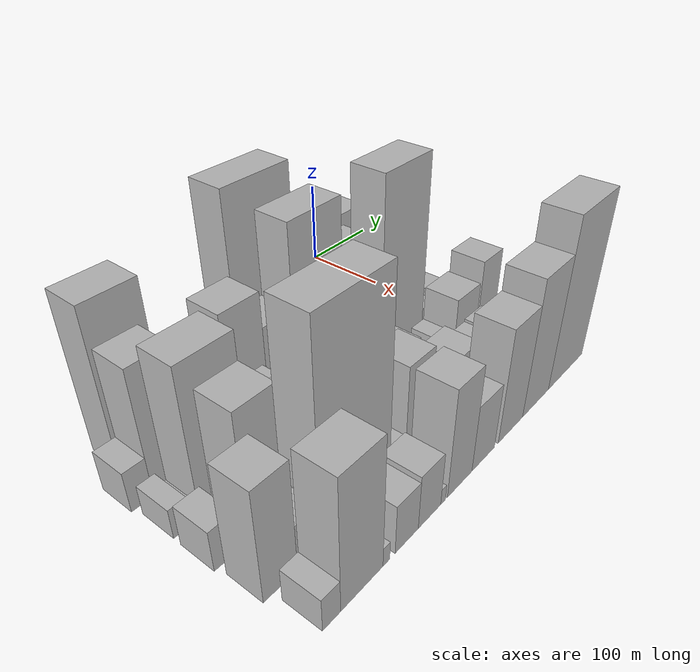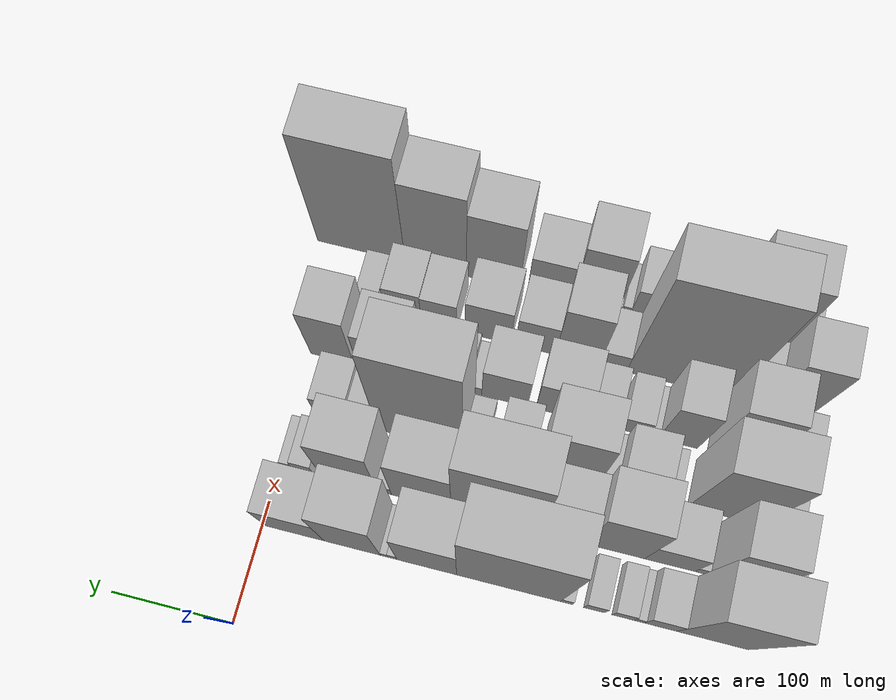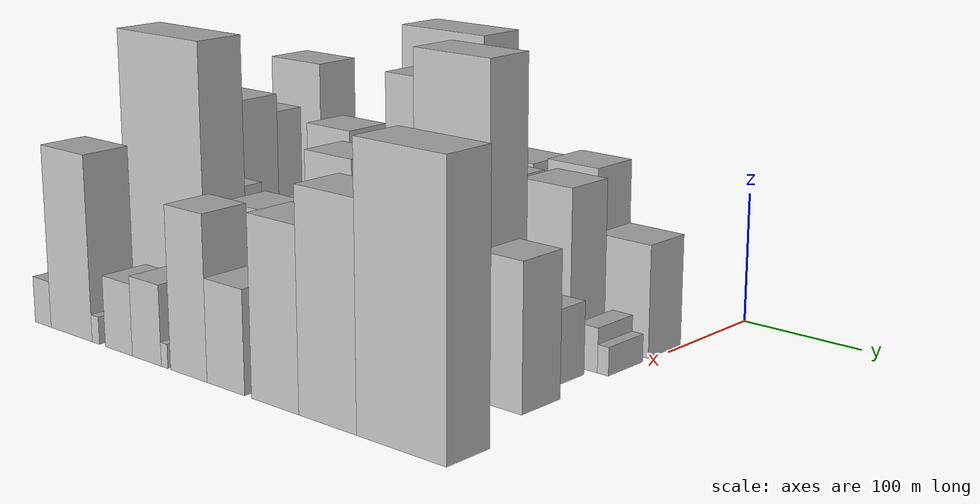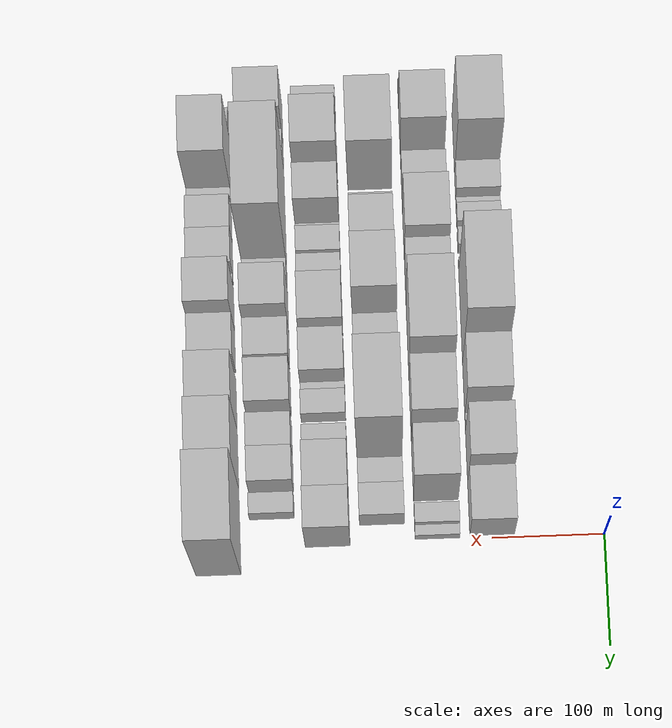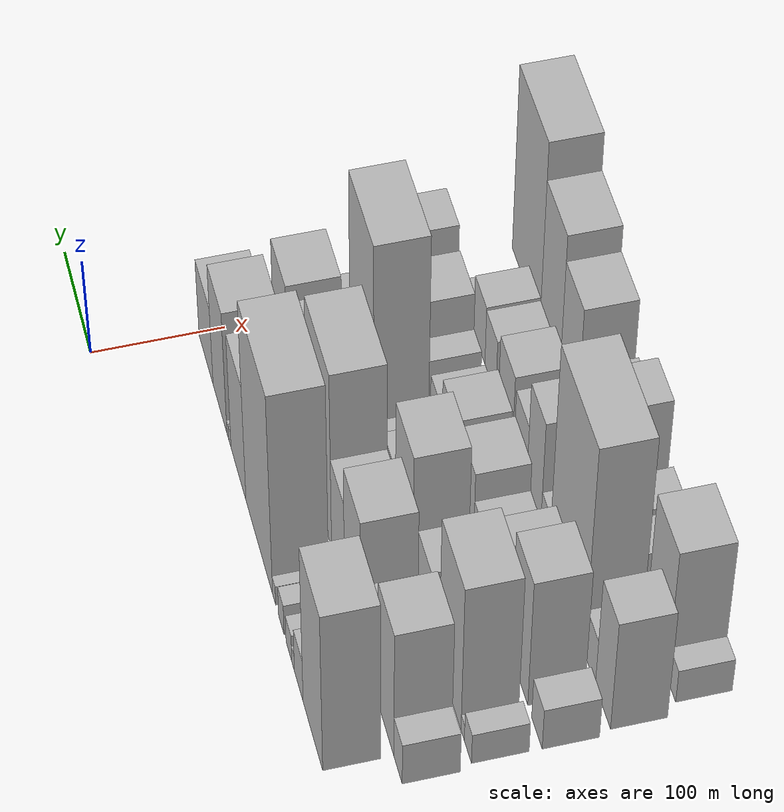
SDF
<sdf version="1.6">
 <world name="default">
  <model name="building_11">
   <static>1</static>
   <pose>100.0000 -366.6551 0 0.000000 0.000000 0.000000</pose>
   <link name="link">
    <pose>0 0 87.00 0 0 0</pose>
    <collision name="collision"><geometry><box><size>40.0000 57.4342 174.0000</size></box></geometry></collision>
    <visual name="visual">
     <cast_shadows>0</cast_shadows>
     <geometry><box><size>40.0000 57.4342 174.0000</size></box></geometry>
     <material>
      <script>
       <uri>model://HANNAS_wall/materials/scripts</uri>
       <uri>model://HANNAS_wall/materials/textures</uri>
       <name>vrc/HANNAS_wall</name>
      </script>
     </material>
    </visual>
   </link>
  </model>
  <model name="building_12">
   <static>1</static>
   <pose>100.0000 -324.9212 0 0.000000 0.000000 0.000000</pose>
   <link name="link">
    <pose>0 0 24.00 0 0 0</pose>
    <collision name="collision"><geometry><box><size>40.0000 26.0335 48.0000</size></box></geometry></collision>
    <visual name="visual">
     <cast_shadows>0</cast_shadows>
     <geometry><box><size>40.0000 26.0335 48.0000</size></box></geometry>
     <material>
      <script>
       <uri>model://HANNAS_wall/materials/scripts</uri>
       <uri>model://HANNAS_wall/materials/textures</uri>
       <name>vrc/HANNAS_wall</name>
      </script>
     </material>
    </visual>
   </link>
  </model>
  <model name="building_13">
   <static>1</static>
   <pose>100.0000 -307.8725 0 0.000000 0.000000 0.000000</pose>
   <link name="link">
    <pose>0 0 9.00 0 0 0</pose>
    <collision name="collision"><geometry><box><size>40.0000 8.0638 18.0000</size></box></geometry></collision>
    <visual name="visual">
     <cast_shadows>0</cast_shadows>
     <geometry><box><size>40.0000 8.0638 18.0000</size></box></geometry>
     <material>
      <script>
       <uri>model://HANNAS_wall/materials/scripts</uri>
       <uri>model://HANNAS_wall/materials/textures</uri>
       <name>vrc/HANNAS_wall</name>
      </script>
     </material>
    </visual>
   </link>
  </model>
  <model name="building_14">
   <static>1</static>
   <pose>100.0000 -295.1148 0 0.000000 0.000000 0.000000</pose>
   <link name="link">
    <pose>0 0 15.00 0 0 0</pose>
    <collision name="collision"><geometry><box><size>40.0000 17.4516 30.0000</size></box></geometry></collision>
    <visual name="visual">
     <cast_shadows>0</cast_shadows>
     <geometry><box><size>40.0000 17.4516 30.0000</size></box></geometry>
     <material>
      <script>
       <uri>model://HANNAS_wall/materials/scripts</uri>
       <uri>model://HANNAS_wall/materials/textures</uri>
       <name>vrc/HANNAS_wall</name>
      </script>
     </material>
    </visual>
   </link>
  </model>
  <model name="building_15">
   <static>1</static>
   <pose>100.0000 -271.9981 0 0.000000 0.000000 0.000000</pose>
   <link name="link">
    <pose>0 0 16.50 0 0 0</pose>
    <collision name="collision"><geometry><box><size>40.0000 16.7818 33.0000</size></box></geometry></collision>
    <visual name="visual">
     <cast_shadows>0</cast_shadows>
     <geometry><box><size>40.0000 16.7818 33.0000</size></box></geometry>
     <material>
      <script>
       <uri>model://HANNAS_wall/materials/scripts</uri>
       <uri>model://HANNAS_wall/materials/textures</uri>
       <name>vrc/HANNAS_wall</name>
      </script>
     </material>
    </visual>
   </link>
  </model>
  <model name="building_16">
   <static>1</static>
   <pose>100.0000 -249.7457 0 0.000000 0.000000 0.000000</pose>
   <link name="link">
    <pose>0 0 10.50 0 0 0</pose>
    <collision name="collision"><geometry><box><size>40.0000 9.7230 21.0000</size></box></geometry></collision>
    <visual name="visual">
     <cast_shadows>0</cast_shadows>
     <geometry><box><size>40.0000 9.7230 21.0000</size></box></geometry>
     <material>
      <script>
       <uri>model://HANNAS_wall/materials/scripts</uri>
       <uri>model://HANNAS_wall/materials/textures</uri>
       <name>vrc/HANNAS_wall</name>
      </script>
     </material>
    </visual>
   </link>
  </model>
  <model name="building_17">
   <static>1</static>
   <pose>100.0000 -202.7161 0 0.000000 0.000000 0.000000</pose>
   <link name="link">
    <pose>0 0 108.00 0 0 0</pose>
    <collision name="collision"><geometry><box><size>40.0000 84.3361 216.0000</size></box></geometry></collision>
    <visual name="visual">
     <cast_shadows>0</cast_shadows>
     <geometry><box><size>40.0000 84.3361 216.0000</size></box></geometry>
     <material>
      <script>
       <uri>model://HANNAS_wall/materials/scripts</uri>
       <uri>model://HANNAS_wall/materials/textures</uri>
       <name>vrc/HANNAS_wall</name>
      </script>
     </material>
    </visual>
   </link>
  </model>
  <model name="building_18">
   <static>1</static>
   <pose>100.0000 -136.1707 0 0.000000 0.000000 0.000000</pose>
   <link name="link">
    <pose>0 0 63.00 0 0 0</pose>
    <collision name="collision"><geometry><box><size>40.0000 48.7547 126.0000</size></box></geometry></collision>
    <visual name="visual">
     <cast_shadows>0</cast_shadows>
     <geometry><box><size>40.0000 48.7547 126.0000</size></box></geometry>
     <material>
      <script>
       <uri>model://HANNAS_wall/materials/scripts</uri>
       <uri>model://HANNAS_wall/materials/textures</uri>
       <name>vrc/HANNAS_wall</name>
      </script>
     </material>
    </visual>
   </link>
  </model>
  <model name="building_19">
   <static>1</static>
   <pose>100.0000 -107.9350 0 0.000000 0.000000 0.000000</pose>
   <link name="link">
    <pose>0 0 9.00 0 0 0</pose>
    <collision name="collision"><geometry><box><size>40.0000 7.7166 18.0000</size></box></geometry></collision>
    <visual name="visual">
     <cast_shadows>0</cast_shadows>
     <geometry><box><size>40.0000 7.7166 18.0000</size></box></geometry>
     <material>
      <script>
       <uri>model://HANNAS_wall/materials/scripts</uri>
       <uri>model://HANNAS_wall/materials/textures</uri>
       <name>vrc/HANNAS_wall</name>
      </script>
     </material>
    </visual>
   </link>
  </model>
  <model name="building_20">
   <static>1</static>
   <pose>100.0000 -101.0726 0 0.000000 0.000000 0.000000</pose>
   <link name="link">
    <pose>0 0 7.50 0 0 0</pose>
    <collision name="collision"><geometry><box><size>40.0000 6.0082 15.0000</size></box></geometry></collision>
    <visual name="visual">
     <cast_shadows>0</cast_shadows>
     <geometry><box><size>40.0000 6.0082 15.0000</size></box></geometry>
     <material>
      <script>
       <uri>model://HANNAS_wall/materials/scripts</uri>
       <uri>model://HANNAS_wall/materials/textures</uri>
       <name>vrc/HANNAS_wall</name>
      </script>
     </material>
    </visual>
   </link>
  </model>
  <model name="building_21">
   <static>1</static>
   <pose>100.0000 -74.8214 0 0.000000 0.000000 0.000000</pose>
   <link name="link">
    <pose>0 0 66.00 0 0 0</pose>
    <collision name="collision"><geometry><box><size>40.0000 46.4943 132.0000</size></box></geometry></collision>
    <visual name="visual">
     <cast_shadows>0</cast_shadows>
     <geometry><box><size>40.0000 46.4943 132.0000</size></box></geometry>
     <material>
      <script>
       <uri>model://HANNAS_wall/materials/scripts</uri>
       <uri>model://HANNAS_wall/materials/textures</uri>
       <name>vrc/HANNAS_wall</name>
      </script>
     </material>
    </visual>
   </link>
  </model>
  <model name="building_22">
   <static>1</static>
   <pose>100.0000 -27.4610 0 0.000000 0.000000 0.000000</pose>
   <link name="link">
    <pose>0 0 42.00 0 0 0</pose>
    <collision name="collision"><geometry><box><size>40.0000 48.2265 84.0000</size></box></geometry></collision>
    <visual name="visual">
     <cast_shadows>0</cast_shadows>
     <geometry><box><size>40.0000 48.2265 84.0000</size></box></geometry>
     <material>
      <script>
       <uri>model://HANNAS_wall/materials/scripts</uri>
       <uri>model://HANNAS_wall/materials/textures</uri>
       <name>vrc/HANNAS_wall</name>
      </script>
     </material>
    </visual>
   </link>
  </model>
  <model name="building_59">
   <static>1</static>
   <pose>149.0000 -406.9824 0 0.000000 0.000000 0.000000</pose>
   <link name="link">
    <pose>0 0 22.50 0 0 0</pose>
    <collision name="collision"><geometry><box><size>40.0000 22.8685 45.0000</size></box></geometry></collision>
    <visual name="visual">
     <cast_shadows>0</cast_shadows>
     <geometry><box><size>40.0000 22.8685 45.0000</size></box></geometry>
     <material>
      <script>
       <uri>model://HANNAS_wall/materials/scripts</uri>
       <uri>model://HANNAS_wall/materials/textures</uri>
       <name>vrc/HANNAS_wall</name>
      </script>
     </material>
    </visual>
   </link>
  </model>
  <model name="building_60">
   <static>1</static>
   <pose>149.0000 -373.7912 0 0.000000 0.000000 0.000000</pose>
   <link name="link">
    <pose>0 0 69.00 0 0 0</pose>
    <collision name="collision"><geometry><box><size>40.0000 43.5139 138.0000</size></box></geometry></collision>
    <visual name="visual">
     <cast_shadows>0</cast_shadows>
     <geometry><box><size>40.0000 43.5139 138.0000</size></box></geometry>
     <material>
      <script>
       <uri>model://HANNAS_wall/materials/scripts</uri>
       <uri>model://HANNAS_wall/materials/textures</uri>
       <name>vrc/HANNAS_wall</name>
      </script>
     </material>
    </visual>
   </link>
  </model>
  <model name="building_61">
   <static>1</static>
   <pose>149.0000 -347.4474 0 0.000000 0.000000 0.000000</pose>
   <link name="link">
    <pose>0 0 10.50 0 0 0</pose>
    <collision name="collision"><geometry><box><size>40.0000 9.1737 21.0000</size></box></geometry></collision>
    <visual name="visual">
     <cast_shadows>0</cast_shadows>
     <geometry><box><size>40.0000 9.1737 21.0000</size></box></geometry>
     <material>
      <script>
       <uri>model://HANNAS_wall/materials/scripts</uri>
       <uri>model://HANNAS_wall/materials/textures</uri>
       <name>vrc/HANNAS_wall</name>
      </script>
     </material>
    </visual>
   </link>
  </model>
  <model name="building_62">
   <static>1</static>
   <pose>149.0000 -322.5647 0 0.000000 0.000000 0.000000</pose>
   <link name="link">
    <pose>0 0 34.50 0 0 0</pose>
    <collision name="collision"><geometry><box><size>40.0000 40.5917 69.0000</size></box></geometry></collision>
    <visual name="visual">
     <cast_shadows>0</cast_shadows>
     <geometry><box><size>40.0000 40.5917 69.0000</size></box></geometry>
     <material>
      <script>
       <uri>model://HANNAS_wall/materials/scripts</uri>
       <uri>model://HANNAS_wall/materials/textures</uri>
       <name>vrc/HANNAS_wall</name>
      </script>
     </material>
    </visual>
   </link>
  </model>
  <model name="building_63">
   <static>1</static>
   <pose>149.0000 -278.4743 0 0.000000 0.000000 0.000000</pose>
   <link name="link">
    <pose>0 0 69.00 0 0 0</pose>
    <collision name="collision"><geometry><box><size>40.0000 47.5891 138.0000</size></box></geometry></collision>
    <visual name="visual">
     <cast_shadows>0</cast_shadows>
     <geometry><box><size>40.0000 47.5891 138.0000</size></box></geometry>
     <material>
      <script>
       <uri>model://HANNAS_wall/materials/scripts</uri>
       <uri>model://HANNAS_wall/materials/textures</uri>
       <name>vrc/HANNAS_wall</name>
      </script>
     </material>
    </visual>
   </link>
  </model>
  <model name="building_64">
   <static>1</static>
   <pose>149.0000 -235.1971 0 0.000000 0.000000 0.000000</pose>
   <link name="link">
    <pose>0 0 49.50 0 0 0</pose>
    <collision name="collision"><geometry><box><size>40.0000 38.9654 99.0000</size></box></geometry></collision>
    <visual name="visual">
     <cast_shadows>0</cast_shadows>
     <geometry><box><size>40.0000 38.9654 99.0000</size></box></geometry>
     <material>
      <script>
       <uri>model://HANNAS_wall/materials/scripts</uri>
       <uri>model://HANNAS_wall/materials/textures</uri>
       <name>vrc/HANNAS_wall</name>
      </script>
     </material>
    </visual>
   </link>
  </model>
  <model name="building_65">
   <static>1</static>
   <pose>149.0000 -179.7272 0 0.000000 0.000000 0.000000</pose>
   <link name="link">
    <pose>0 0 94.50 0 0 0</pose>
    <collision name="collision"><geometry><box><size>40.0000 71.9743 189.0000</size></box></geometry></collision>
    <visual name="visual">
     <cast_shadows>0</cast_shadows>
     <geometry><box><size>40.0000 71.9743 189.0000</size></box></geometry>
     <material>
      <script>
       <uri>model://HANNAS_wall/materials/scripts</uri>
       <uri>model://HANNAS_wall/materials/textures</uri>
       <name>vrc/HANNAS_wall</name>
      </script>
     </material>
    </visual>
   </link>
  </model>
  <model name="building_66">
   <static>1</static>
   <pose>149.0000 -118.8630 0 0.000000 0.000000 0.000000</pose>
   <link name="link">
    <pose>0 0 63.00 0 0 0</pose>
    <collision name="collision"><geometry><box><size>40.0000 49.7541 126.0000</size></box></geometry></collision>
    <visual name="visual">
     <cast_shadows>0</cast_shadows>
     <geometry><box><size>40.0000 49.7541 126.0000</size></box></geometry>
     <material>
      <script>
       <uri>model://HANNAS_wall/materials/scripts</uri>
       <uri>model://HANNAS_wall/materials/textures</uri>
       <name>vrc/HANNAS_wall</name>
      </script>
     </material>
    </visual>
   </link>
  </model>
  <model name="building_67">
   <static>1</static>
   <pose>149.0000 -88.0006 0 0.000000 0.000000 0.000000</pose>
   <link name="link">
    <pose>0 0 12.00 0 0 0</pose>
    <collision name="collision"><geometry><box><size>40.0000 11.9706 24.0000</size></box></geometry></collision>
    <visual name="visual">
     <cast_shadows>0</cast_shadows>
     <geometry><box><size>40.0000 11.9706 24.0000</size></box></geometry>
     <material>
      <script>
       <uri>model://HANNAS_wall/materials/scripts</uri>
       <uri>model://HANNAS_wall/materials/textures</uri>
       <name>vrc/HANNAS_wall</name>
      </script>
     </material>
    </visual>
   </link>
  </model>
  <model name="building_68">
   <static>1</static>
   <pose>149.0000 -59.0930 0 0.000000 0.000000 0.000000</pose>
   <link name="link">
    <pose>0 0 64.50 0 0 0</pose>
    <collision name="collision"><geometry><box><size>40.0000 45.8446 129.0000</size></box></geometry></collision>
    <visual name="visual">
     <cast_shadows>0</cast_shadows>
     <geometry><box><size>40.0000 45.8446 129.0000</size></box></geometry>
     <material>
      <script>
       <uri>model://HANNAS_wall/materials/scripts</uri>
       <uri>model://HANNAS_wall/materials/textures</uri>
       <name>vrc/HANNAS_wall</name>
      </script>
     </material>
    </visual>
   </link>
  </model>
  <model name="building_69">
   <static>1</static>
   <pose>149.0000 -20.2606 0 0.000000 0.000000 0.000000</pose>
   <link name="link">
    <pose>0 0 16.50 0 0 0</pose>
    <collision name="collision"><geometry><box><size>40.0000 17.8203 33.0000</size></box></geometry></collision>
    <visual name="visual">
     <cast_shadows>0</cast_shadows>
     <geometry><box><size>40.0000 17.8203 33.0000</size></box></geometry>
     <material>
      <script>
       <uri>model://HANNAS_wall/materials/scripts</uri>
       <uri>model://HANNAS_wall/materials/textures</uri>
       <name>vrc/HANNAS_wall</name>
      </script>
     </material>
    </visual>
   </link>
  </model>
  <model name="building_70">
   <static>1</static>
   <pose>149.0000 -6.4971 0 0.000000 0.000000 0.000000</pose>
   <link name="link">
    <pose>0 0 10.50 0 0 0</pose>
    <collision name="collision"><geometry><box><size>40.0000 9.7068 21.0000</size></box></geometry></collision>
    <visual name="visual">
     <cast_shadows>0</cast_shadows>
     <geometry><box><size>40.0000 9.7068 21.0000</size></box></geometry>
     <material>
      <script>
       <uri>model://HANNAS_wall/materials/scripts</uri>
       <uri>model://HANNAS_wall/materials/textures</uri>
       <name>vrc/HANNAS_wall</name>
      </script>
     </material>
    </visual>
   </link>
  </model>
  <model name="building_108">
   <static>1</static>
   <pose>198.0000 -404.3457 0 0.000000 0.000000 0.000000</pose>
   <link name="link">
    <pose>0 0 16.50 0 0 0</pose>
    <collision name="collision"><geometry><box><size>40.0000 18.6517 33.0000</size></box></geometry></collision>
    <visual name="visual">
     <cast_shadows>0</cast_shadows>
     <geometry><box><size>40.0000 18.6517 33.0000</size></box></geometry>
     <material>
      <script>
       <uri>model://HANNAS_wall/materials/scripts</uri>
       <uri>model://HANNAS_wall/materials/textures</uri>
       <name>vrc/HANNAS_wall</name>
      </script>
     </material>
    </visual>
   </link>
  </model>
  <model name="building_109">
   <static>1</static>
   <pose>198.0000 -390.5286 0 0.000000 0.000000 0.000000</pose>
   <link name="link">
    <pose>0 0 9.00 0 0 0</pose>
    <collision name="collision"><geometry><box><size>40.0000 8.9823 18.0000</size></box></geometry></collision>
    <visual name="visual">
     <cast_shadows>0</cast_shadows>
     <geometry><box><size>40.0000 8.9823 18.0000</size></box></geometry>
     <material>
      <script>
       <uri>model://HANNAS_wall/materials/scripts</uri>
       <uri>model://HANNAS_wall/materials/textures</uri>
       <name>vrc/HANNAS_wall</name>
      </script>
     </material>
    </visual>
   </link>
  </model>
  <model name="building_110">
   <static>1</static>
   <pose>198.0000 -356.4612 0 0.000000 0.000000 0.000000</pose>
   <link name="link">
    <pose>0 0 79.50 0 0 0</pose>
    <collision name="collision"><geometry><box><size>40.0000 59.1525 159.0000</size></box></geometry></collision>
    <visual name="visual">
     <cast_shadows>0</cast_shadows>
     <geometry><box><size>40.0000 59.1525 159.0000</size></box></geometry>
     <material>
      <script>
       <uri>model://HANNAS_wall/materials/scripts</uri>
       <uri>model://HANNAS_wall/materials/textures</uri>
       <name>vrc/HANNAS_wall</name>
      </script>
     </material>
    </visual>
   </link>
  </model>
  <model name="building_111">
   <static>1</static>
   <pose>198.0000 -310.3316 0 0.000000 0.000000 0.000000</pose>
   <link name="link">
    <pose>0 0 13.50 0 0 0</pose>
    <collision name="collision"><geometry><box><size>40.0000 13.1068 27.0000</size></box></geometry></collision>
    <visual name="visual">
     <cast_shadows>0</cast_shadows>
     <geometry><box><size>40.0000 13.1068 27.0000</size></box></geometry>
     <material>
      <script>
       <uri>model://HANNAS_wall/materials/scripts</uri>
       <uri>model://HANNAS_wall/materials/textures</uri>
       <name>vrc/HANNAS_wall</name>
      </script>
     </material>
    </visual>
   </link>
  </model>
  <model name="building_112">
   <static>1</static>
   <pose>198.0000 -285.1977 0 0.000000 0.000000 0.000000</pose>
   <link name="link">
    <pose>0 0 34.50 0 0 0</pose>
    <collision name="collision"><geometry><box><size>40.0000 37.1611 69.0000</size></box></geometry></collision>
    <visual name="visual">
     <cast_shadows>0</cast_shadows>
     <geometry><box><size>40.0000 37.1611 69.0000</size></box></geometry>
     <material>
      <script>
       <uri>model://HANNAS_wall/materials/scripts</uri>
       <uri>model://HANNAS_wall/materials/textures</uri>
       <name>vrc/HANNAS_wall</name>
      </script>
     </material>
    </visual>
   </link>
  </model>
  <model name="building_113">
   <static>1</static>
   <pose>198.0000 -259.9781 0 0.000000 0.000000 0.000000</pose>
   <link name="link">
    <pose>0 0 13.50 0 0 0</pose>
    <collision name="collision"><geometry><box><size>40.0000 13.2782 27.0000</size></box></geometry></collision>
    <visual name="visual">
     <cast_shadows>0</cast_shadows>
     <geometry><box><size>40.0000 13.2782 27.0000</size></box></geometry>
     <material>
      <script>
       <uri>model://HANNAS_wall/materials/scripts</uri>
       <uri>model://HANNAS_wall/materials/textures</uri>
       <name>vrc/HANNAS_wall</name>
      </script>
     </material>
    </visual>
   </link>
  </model>
  <model name="building_114">
   <static>1</static>
   <pose>198.0000 -228.3812 0 0.000000 0.000000 0.000000</pose>
   <link name="link">
    <pose>0 0 66.00 0 0 0</pose>
    <collision name="collision"><geometry><box><size>40.0000 49.9155 132.0000</size></box></geometry></collision>
    <visual name="visual">
     <cast_shadows>0</cast_shadows>
     <geometry><box><size>40.0000 49.9155 132.0000</size></box></geometry>
     <material>
      <script>
       <uri>model://HANNAS_wall/materials/scripts</uri>
       <uri>model://HANNAS_wall/materials/textures</uri>
       <name>vrc/HANNAS_wall</name>
      </script>
     </material>
    </visual>
   </link>
  </model>
  <model name="building_115">
   <static>1</static>
   <pose>198.0000 -182.8052 0 0.000000 0.000000 0.000000</pose>
   <link name="link">
    <pose>0 0 28.50 0 0 0</pose>
    <collision name="collision"><geometry><box><size>40.0000 29.2365 57.0000</size></box></geometry></collision>
    <visual name="visual">
     <cast_shadows>0</cast_shadows>
     <geometry><box><size>40.0000 29.2365 57.0000</size></box></geometry>
     <material>
      <script>
       <uri>model://HANNAS_wall/materials/scripts</uri>
       <uri>model://HANNAS_wall/materials/textures</uri>
       <name>vrc/HANNAS_wall</name>
      </script>
     </material>
    </visual>
   </link>
  </model>
  <model name="building_116">
   <static>1</static>
   <pose>198.0000 -149.9096 0 0.000000 0.000000 0.000000</pose>
   <link name="link">
    <pose>0 0 18.00 0 0 0</pose>
    <collision name="collision"><geometry><box><size>40.0000 18.5547 36.0000</size></box></geometry></collision>
    <visual name="visual">
     <cast_shadows>0</cast_shadows>
     <geometry><box><size>40.0000 18.5547 36.0000</size></box></geometry>
     <material>
      <script>
       <uri>model://HANNAS_wall/materials/scripts</uri>
       <uri>model://HANNAS_wall/materials/textures</uri>
       <name>vrc/HANNAS_wall</name>
      </script>
     </material>
    </visual>
   </link>
  </model>
  <model name="building_117">
   <static>1</static>
   <pose>198.0000 -104.8981 0 0.000000 0.000000 0.000000</pose>
   <link name="link">
    <pose>0 0 111.00 0 0 0</pose>
    <collision name="collision"><geometry><box><size>40.0000 71.4684 222.0000</size></box></geometry></collision>
    <visual name="visual">
     <cast_shadows>0</cast_shadows>
     <geometry><box><size>40.0000 71.4684 222.0000</size></box></geometry>
     <material>
      <script>
       <uri>model://HANNAS_wall/materials/scripts</uri>
       <uri>model://HANNAS_wall/materials/textures</uri>
       <name>vrc/HANNAS_wall</name>
      </script>
     </material>
    </visual>
   </link>
  </model>
  <model name="building_118">
   <static>1</static>
   <pose>198.0000 -57.1435 0 0.000000 0.000000 0.000000</pose>
   <link name="link">
    <pose>0 0 22.50 0 0 0</pose>
    <collision name="collision"><geometry><box><size>40.0000 24.0407 45.0000</size></box></geometry></collision>
    <visual name="visual">
     <cast_shadows>0</cast_shadows>
     <geometry><box><size>40.0000 24.0407 45.0000</size></box></geometry>
     <material>
      <script>
       <uri>model://HANNAS_wall/materials/scripts</uri>
       <uri>model://HANNAS_wall/materials/textures</uri>
       <name>vrc/HANNAS_wall</name>
      </script>
     </material>
    </visual>
   </link>
  </model>
  <model name="building_119">
   <static>1</static>
   <pose>198.0000 -30.6339 0 0.000000 0.000000 0.000000</pose>
   <link name="link">
    <pose>0 0 27.00 0 0 0</pose>
    <collision name="collision"><geometry><box><size>40.0000 28.9785 54.0000</size></box></geometry></collision>
    <visual name="visual">
     <cast_shadows>0</cast_shadows>
     <geometry><box><size>40.0000 28.9785 54.0000</size></box></geometry>
     <material>
      <script>
       <uri>model://HANNAS_wall/materials/scripts</uri>
       <uri>model://HANNAS_wall/materials/textures</uri>
       <name>vrc/HANNAS_wall</name>
      </script>
     </material>
    </visual>
   </link>
  </model>
  <model name="building_153">
   <static>1</static>
   <pose>247.0000 -400.6418 0 0.000000 0.000000 0.000000</pose>
   <link name="link">
    <pose>0 0 22.50 0 0 0</pose>
    <collision name="collision"><geometry><box><size>40.0000 26.5850 45.0000</size></box></geometry></collision>
    <visual name="visual">
     <cast_shadows>0</cast_shadows>
     <geometry><box><size>40.0000 26.5850 45.0000</size></box></geometry>
     <material>
      <script>
       <uri>model://HANNAS_wall/materials/scripts</uri>
       <uri>model://HANNAS_wall/materials/textures</uri>
       <name>vrc/HANNAS_wall</name>
      </script>
     </material>
    </visual>
   </link>
  </model>
  <model name="building_154">
   <static>1</static>
   <pose>247.0000 -355.5454 0 0.000000 0.000000 0.000000</pose>
   <link name="link">
    <pose>0 0 69.00 0 0 0</pose>
    <collision name="collision"><geometry><box><size>40.0000 43.6077 138.0000</size></box></geometry></collision>
    <visual name="visual">
     <cast_shadows>0</cast_shadows>
     <geometry><box><size>40.0000 43.6077 138.0000</size></box></geometry>
     <material>
      <script>
       <uri>model://HANNAS_wall/materials/scripts</uri>
       <uri>model://HANNAS_wall/materials/textures</uri>
       <name>vrc/HANNAS_wall</name>
      </script>
     </material>
    </visual>
   </link>
  </model>
  <model name="building_155">
   <static>1</static>
   <pose>247.0000 -309.0284 0 0.000000 0.000000 0.000000</pose>
   <link name="link">
    <pose>0 0 51.00 0 0 0</pose>
    <collision name="collision"><geometry><box><size>40.0000 33.4264 102.0000</size></box></geometry></collision>
    <visual name="visual">
     <cast_shadows>0</cast_shadows>
     <geometry><box><size>40.0000 33.4264 102.0000</size></box></geometry>
     <material>
      <script>
       <uri>model://HANNAS_wall/materials/scripts</uri>
       <uri>model://HANNAS_wall/materials/textures</uri>
       <name>vrc/HANNAS_wall</name>
      </script>
     </material>
    </visual>
   </link>
  </model>
  <model name="building_156">
   <static>1</static>
   <pose>247.0000 -288.5569 0 0.000000 0.000000 0.000000</pose>
   <link name="link">
    <pose>0 0 9.00 0 0 0</pose>
    <collision name="collision"><geometry><box><size>40.0000 7.5166 18.0000</size></box></geometry></collision>
    <visual name="visual">
     <cast_shadows>0</cast_shadows>
     <geometry><box><size>40.0000 7.5166 18.0000</size></box></geometry>
     <material>
      <script>
       <uri>model://HANNAS_wall/materials/scripts</uri>
       <uri>model://HANNAS_wall/materials/textures</uri>
       <name>vrc/HANNAS_wall</name>
      </script>
     </material>
    </visual>
   </link>
  </model>
  <model name="building_157">
   <static>1</static>
   <pose>247.0000 -273.1166 0 0.000000 0.000000 0.000000</pose>
   <link name="link">
    <pose>0 0 19.50 0 0 0</pose>
    <collision name="collision"><geometry><box><size>40.0000 23.3640 39.0000</size></box></geometry></collision>
    <visual name="visual">
     <cast_shadows>0</cast_shadows>
     <geometry><box><size>40.0000 23.3640 39.0000</size></box></geometry>
     <material>
      <script>
       <uri>model://HANNAS_wall/materials/scripts</uri>
       <uri>model://HANNAS_wall/materials/textures</uri>
       <name>vrc/HANNAS_wall</name>
      </script>
     </material>
    </visual>
   </link>
  </model>
  <model name="building_158">
   <static>1</static>
   <pose>247.0000 -245.4949 0 0.000000 0.000000 0.000000</pose>
   <link name="link">
    <pose>0 0 22.50 0 0 0</pose>
    <collision name="collision"><geometry><box><size>40.0000 23.8794 45.0000</size></box></geometry></collision>
    <visual name="visual">
     <cast_shadows>0</cast_shadows>
     <geometry><box><size>40.0000 23.8794 45.0000</size></box></geometry>
     <material>
      <script>
       <uri>model://HANNAS_wall/materials/scripts</uri>
       <uri>model://HANNAS_wall/materials/textures</uri>
       <name>vrc/HANNAS_wall</name>
      </script>
     </material>
    </visual>
   </link>
  </model>
  <model name="building_159">
   <static>1</static>
   <pose>247.0000 -211.9148 0 0.000000 0.000000 0.000000</pose>
   <link name="link">
    <pose>0 0 37.50 0 0 0</pose>
    <collision name="collision"><geometry><box><size>40.0000 43.2808 75.0000</size></box></geometry></collision>
    <visual name="visual">
     <cast_shadows>0</cast_shadows>
     <geometry><box><size>40.0000 43.2808 75.0000</size></box></geometry>
     <material>
      <script>
       <uri>model://HANNAS_wall/materials/scripts</uri>
       <uri>model://HANNAS_wall/materials/textures</uri>
       <name>vrc/HANNAS_wall</name>
      </script>
     </material>
    </visual>
   </link>
  </model>
  <model name="building_160">
   <static>1</static>
   <pose>247.0000 -163.7954 0 0.000000 0.000000 0.000000</pose>
   <link name="link">
    <pose>0 0 36.00 0 0 0</pose>
    <collision name="collision"><geometry><box><size>40.0000 38.9579 72.0000</size></box></geometry></collision>
    <visual name="visual">
     <cast_shadows>0</cast_shadows>
     <geometry><box><size>40.0000 38.9579 72.0000</size></box></geometry>
     <material>
      <script>
       <uri>model://HANNAS_wall/materials/scripts</uri>
       <uri>model://HANNAS_wall/materials/textures</uri>
       <name>vrc/HANNAS_wall</name>
      </script>
     </material>
    </visual>
   </link>
  </model>
  <model name="building_161">
   <static>1</static>
   <pose>247.0000 -139.2369 0 0.000000 0.000000 0.000000</pose>
   <link name="link">
    <pose>0 0 10.50 0 0 0</pose>
    <collision name="collision"><geometry><box><size>40.0000 10.1592 21.0000</size></box></geometry></collision>
    <visual name="visual">
     <cast_shadows>0</cast_shadows>
     <geometry><box><size>40.0000 10.1592 21.0000</size></box></geometry>
     <material>
      <script>
       <uri>model://HANNAS_wall/materials/scripts</uri>
       <uri>model://HANNAS_wall/materials/textures</uri>
       <name>vrc/HANNAS_wall</name>
      </script>
     </material>
    </visual>
   </link>
  </model>
  <model name="building_162">
   <static>1</static>
   <pose>247.0000 -123.0044 0 0.000000 0.000000 0.000000</pose>
   <link name="link">
    <pose>0 0 19.50 0 0 0</pose>
    <collision name="collision"><geometry><box><size>40.0000 22.3057 39.0000</size></box></geometry></collision>
    <visual name="visual">
     <cast_shadows>0</cast_shadows>
     <geometry><box><size>40.0000 22.3057 39.0000</size></box></geometry>
     <material>
      <script>
       <uri>model://HANNAS_wall/materials/scripts</uri>
       <uri>model://HANNAS_wall/materials/textures</uri>
       <name>vrc/HANNAS_wall</name>
      </script>
     </material>
    </visual>
   </link>
  </model>
  <model name="building_163">
   <static>1</static>
   <pose>247.0000 -90.9836 0 0.000000 0.000000 0.000000</pose>
   <link name="link">
    <pose>0 0 21.00 0 0 0</pose>
    <collision name="collision"><geometry><box><size>40.0000 21.7359 42.0000</size></box></geometry></collision>
    <visual name="visual">
     <cast_shadows>0</cast_shadows>
     <geometry><box><size>40.0000 21.7359 42.0000</size></box></geometry>
     <material>
      <script>
       <uri>model://HANNAS_wall/materials/scripts</uri>
       <uri>model://HANNAS_wall/materials/textures</uri>
       <name>vrc/HANNAS_wall</name>
      </script>
     </material>
    </visual>
   </link>
  </model>
  <model name="building_164">
   <static>1</static>
   <pose>247.0000 -59.0253 0 0.000000 0.000000 0.000000</pose>
   <link name="link">
    <pose>0 0 40.50 0 0 0</pose>
    <collision name="collision"><geometry><box><size>40.0000 42.1806 81.0000</size></box></geometry></collision>
    <visual name="visual">
     <cast_shadows>0</cast_shadows>
     <geometry><box><size>40.0000 42.1806 81.0000</size></box></geometry>
     <material>
      <script>
       <uri>model://HANNAS_wall/materials/scripts</uri>
       <uri>model://HANNAS_wall/materials/textures</uri>
       <name>vrc/HANNAS_wall</name>
      </script>
     </material>
    </visual>
   </link>
  </model>
  <model name="building_165">
   <static>1</static>
   <pose>247.0000 -16.4811 0 0.000000 0.000000 0.000000</pose>
   <link name="link">
    <pose>0 0 52.50 0 0 0</pose>
    <collision name="collision"><geometry><box><size>40.0000 36.9077 105.0000</size></box></geometry></collision>
    <visual name="visual">
     <cast_shadows>0</cast_shadows>
     <geometry><box><size>40.0000 36.9077 105.0000</size></box></geometry>
     <material>
      <script>
       <uri>model://HANNAS_wall/materials/scripts</uri>
       <uri>model://HANNAS_wall/materials/textures</uri>
       <name>vrc/HANNAS_wall</name>
      </script>
     </material>
    </visual>
   </link>
  </model>
  <model name="building_201">
   <static>1</static>
   <pose>296.0000 -390.9650 0 0.000000 0.000000 0.000000</pose>
   <link name="link">
    <pose>0 0 60.00 0 0 0</pose>
    <collision name="collision"><geometry><box><size>40.0000 37.1653 120.0000</size></box></geometry></collision>
    <visual name="visual">
     <cast_shadows>0</cast_shadows>
     <geometry><box><size>40.0000 37.1653 120.0000</size></box></geometry>
     <material>
      <script>
       <uri>model://HANNAS_wall/materials/scripts</uri>
       <uri>model://HANNAS_wall/materials/textures</uri>
       <name>vrc/HANNAS_wall</name>
      </script>
     </material>
    </visual>
   </link>
  </model>
  <model name="building_202">
   <static>1</static>
   <pose>296.0000 -358.9612 0 0.000000 0.000000 0.000000</pose>
   <link name="link">
    <pose>0 0 25.50 0 0 0</pose>
    <collision name="collision"><geometry><box><size>40.0000 26.8422 51.0000</size></box></geometry></collision>
    <visual name="visual">
     <cast_shadows>0</cast_shadows>
     <geometry><box><size>40.0000 26.8422 51.0000</size></box></geometry>
     <material>
      <script>
       <uri>model://HANNAS_wall/materials/scripts</uri>
       <uri>model://HANNAS_wall/materials/textures</uri>
       <name>vrc/HANNAS_wall</name>
      </script>
     </material>
    </visual>
   </link>
  </model>
  <model name="building_203">
   <static>1</static>
   <pose>296.0000 -300.5654 0 0.000000 0.000000 0.000000</pose>
   <link name="link">
    <pose>0 0 112.50 0 0 0</pose>
    <collision name="collision"><geometry><box><size>40.0000 89.9494 225.0000</size></box></geometry></collision>
    <visual name="visual">
     <cast_shadows>0</cast_shadows>
     <geometry><box><size>40.0000 89.9494 225.0000</size></box></geometry>
     <material>
      <script>
       <uri>model://HANNAS_wall/materials/scripts</uri>
       <uri>model://HANNAS_wall/materials/textures</uri>
       <name>vrc/HANNAS_wall</name>
      </script>
     </material>
    </visual>
   </link>
  </model>
  <model name="building_204">
   <static>1</static>
   <pose>296.0000 -244.1359 0 0.000000 0.000000 0.000000</pose>
   <link name="link">
    <pose>0 0 19.50 0 0 0</pose>
    <collision name="collision"><geometry><box><size>40.0000 22.9095 39.0000</size></box></geometry></collision>
    <visual name="visual">
     <cast_shadows>0</cast_shadows>
     <geometry><box><size>40.0000 22.9095 39.0000</size></box></geometry>
     <material>
      <script>
       <uri>model://HANNAS_wall/materials/scripts</uri>
       <uri>model://HANNAS_wall/materials/textures</uri>
       <name>vrc/HANNAS_wall</name>
      </script>
     </material>
    </visual>
   </link>
  </model>
  <model name="building_205">
   <static>1</static>
   <pose>296.0000 -213.9545 0 0.000000 0.000000 0.000000</pose>
   <link name="link">
    <pose>0 0 57.00 0 0 0</pose>
    <collision name="collision"><geometry><box><size>40.0000 37.4534 114.0000</size></box></geometry></collision>
    <visual name="visual">
     <cast_shadows>0</cast_shadows>
     <geometry><box><size>40.0000 37.4534 114.0000</size></box></geometry>
     <material>
      <script>
       <uri>model://HANNAS_wall/materials/scripts</uri>
       <uri>model://HANNAS_wall/materials/textures</uri>
       <name>vrc/HANNAS_wall</name>
      </script>
     </material>
    </visual>
   </link>
  </model>
  <model name="building_206">
   <static>1</static>
   <pose>296.0000 -178.1880 0 0.000000 0.000000 0.000000</pose>
   <link name="link">
    <pose>0 0 33.00 0 0 0</pose>
    <collision name="collision"><geometry><box><size>40.0000 34.0796 66.0000</size></box></geometry></collision>
    <visual name="visual">
     <cast_shadows>0</cast_shadows>
     <geometry><box><size>40.0000 34.0796 66.0000</size></box></geometry>
     <material>
      <script>
       <uri>model://HANNAS_wall/materials/scripts</uri>
       <uri>model://HANNAS_wall/materials/textures</uri>
       <name>vrc/HANNAS_wall</name>
      </script>
     </material>
    </visual>
   </link>
  </model>
  <model name="building_207">
   <static>1</static>
   <pose>296.0000 -137.4212 0 0.000000 0.000000 0.000000</pose>
   <link name="link">
    <pose>0 0 37.50 0 0 0</pose>
    <collision name="collision"><geometry><box><size>40.0000 39.4542 75.0000</size></box></geometry></collision>
    <visual name="visual">
     <cast_shadows>0</cast_shadows>
     <geometry><box><size>40.0000 39.4542 75.0000</size></box></geometry>
     <material>
      <script>
       <uri>model://HANNAS_wall/materials/scripts</uri>
       <uri>model://HANNAS_wall/materials/textures</uri>
       <name>vrc/HANNAS_wall</name>
      </script>
     </material>
    </visual>
   </link>
  </model>
  <model name="building_208">
   <static>1</static>
   <pose>296.0000 -95.4065 0 0.000000 0.000000 0.000000</pose>
   <link name="link">
    <pose>0 0 30.00 0 0 0</pose>
    <collision name="collision"><geometry><box><size>40.0000 30.5752 60.0000</size></box></geometry></collision>
    <visual name="visual">
     <cast_shadows>0</cast_shadows>
     <geometry><box><size>40.0000 30.5752 60.0000</size></box></geometry>
     <material>
      <script>
       <uri>model://HANNAS_wall/materials/scripts</uri>
       <uri>model://HANNAS_wall/materials/textures</uri>
       <name>vrc/HANNAS_wall</name>
      </script>
     </material>
    </visual>
   </link>
  </model>
  <model name="building_209">
   <static>1</static>
   <pose>296.0000 -64.3496 0 0.000000 0.000000 0.000000</pose>
   <link name="link">
    <pose>0 0 31.50 0 0 0</pose>
    <collision name="collision"><geometry><box><size>40.0000 31.5386 63.0000</size></box></geometry></collision>
    <visual name="visual">
     <cast_shadows>0</cast_shadows>
     <geometry><box><size>40.0000 31.5386 63.0000</size></box></geometry>
     <material>
      <script>
       <uri>model://HANNAS_wall/materials/scripts</uri>
       <uri>model://HANNAS_wall/materials/textures</uri>
       <name>vrc/HANNAS_wall</name>
      </script>
     </material>
    </visual>
   </link>
  </model>
  <model name="building_210">
   <static>1</static>
   <pose>296.0000 -34.1002 0 0.000000 0.000000 0.000000</pose>
   <link name="link">
    <pose>0 0 16.50 0 0 0</pose>
    <collision name="collision"><geometry><box><size>40.0000 18.9601 33.0000</size></box></geometry></collision>
    <visual name="visual">
     <cast_shadows>0</cast_shadows>
     <geometry><box><size>40.0000 18.9601 33.0000</size></box></geometry>
     <material>
      <script>
       <uri>model://HANNAS_wall/materials/scripts</uri>
       <uri>model://HANNAS_wall/materials/textures</uri>
       <name>vrc/HANNAS_wall</name>
      </script>
     </material>
    </visual>
   </link>
  </model>
  <model name="building_246">
   <static>1</static>
   <pose>345.0000 -388.8275 0 0.000000 0.000000 0.000000</pose>
   <link name="link">
    <pose>0 0 18.00 0 0 0</pose>
    <collision name="collision"><geometry><box><size>40.0000 20.0849 36.0000</size></box></geometry></collision>
    <visual name="visual">
     <cast_shadows>0</cast_shadows>
     <geometry><box><size>40.0000 20.0849 36.0000</size></box></geometry>
     <material>
      <script>
       <uri>model://HANNAS_wall/materials/scripts</uri>
       <uri>model://HANNAS_wall/materials/textures</uri>
       <name>vrc/HANNAS_wall</name>
      </script>
     </material>
    </visual>
   </link>
  </model>
  <model name="building_247">
   <static>1</static>
   <pose>345.0000 -353.4426 0 0.000000 0.000000 0.000000</pose>
   <link name="link">
    <pose>0 0 70.50 0 0 0</pose>
    <collision name="collision"><geometry><box><size>40.0000 50.6848 141.0000</size></box></geometry></collision>
    <visual name="visual">
     <cast_shadows>0</cast_shadows>
     <geometry><box><size>40.0000 50.6848 141.0000</size></box></geometry>
     <material>
      <script>
       <uri>model://HANNAS_wall/materials/scripts</uri>
       <uri>model://HANNAS_wall/materials/textures</uri>
       <name>vrc/HANNAS_wall</name>
      </script>
     </material>
    </visual>
   </link>
  </model>
  <model name="building_248">
   <static>1</static>
   <pose>345.0000 -323.7342 0 0.000000 0.000000 0.000000</pose>
   <link name="link">
    <pose>0 0 10.50 0 0 0</pose>
    <collision name="collision"><geometry><box><size>40.0000 8.7321 21.0000</size></box></geometry></collision>
    <visual name="visual">
     <cast_shadows>0</cast_shadows>
     <geometry><box><size>40.0000 8.7321 21.0000</size></box></geometry>
     <material>
      <script>
       <uri>model://HANNAS_wall/materials/scripts</uri>
       <uri>model://HANNAS_wall/materials/textures</uri>
       <name>vrc/HANNAS_wall</name>
      </script>
     </material>
    </visual>
   </link>
  </model>
  <model name="building_249">
   <static>1</static>
   <pose>345.0000 -296.6288 0 0.000000 0.000000 0.000000</pose>
   <link name="link">
    <pose>0 0 27.00 0 0 0</pose>
    <collision name="collision"><geometry><box><size>40.0000 31.4786 54.0000</size></box></geometry></collision>
    <visual name="visual">
     <cast_shadows>0</cast_shadows>
     <geometry><box><size>40.0000 31.4786 54.0000</size></box></geometry>
     <material>
      <script>
       <uri>model://HANNAS_wall/materials/scripts</uri>
       <uri>model://HANNAS_wall/materials/textures</uri>
       <name>vrc/HANNAS_wall</name>
      </script>
     </material>
    </visual>
   </link>
  </model>
  <model name="building_250">
   <static>1</static>
   <pose>345.0000 -264.5503 0 0.000000 0.000000 0.000000</pose>
   <link name="link">
    <pose>0 0 30.00 0 0 0</pose>
    <collision name="collision"><geometry><box><size>40.0000 32.6784 60.0000</size></box></geometry></collision>
    <visual name="visual">
     <cast_shadows>0</cast_shadows>
     <geometry><box><size>40.0000 32.6784 60.0000</size></box></geometry>
     <material>
      <script>
       <uri>model://HANNAS_wall/materials/scripts</uri>
       <uri>model://HANNAS_wall/materials/textures</uri>
       <name>vrc/HANNAS_wall</name>
      </script>
     </material>
    </visual>
   </link>
  </model>
  <model name="building_251">
   <static>1</static>
   <pose>345.0000 -244.5988 0 0.000000 0.000000 0.000000</pose>
   <link name="link">
    <pose>0 0 9.00 0 0 0</pose>
    <collision name="collision"><geometry><box><size>40.0000 7.2246 18.0000</size></box></geometry></collision>
    <visual name="visual">
     <cast_shadows>0</cast_shadows>
     <geometry><box><size>40.0000 7.2246 18.0000</size></box></geometry>
     <material>
      <script>
       <uri>model://HANNAS_wall/materials/scripts</uri>
       <uri>model://HANNAS_wall/materials/textures</uri>
       <name>vrc/HANNAS_wall</name>
      </script>
     </material>
    </visual>
   </link>
  </model>
  <model name="building_252">
   <static>1</static>
   <pose>345.0000 -218.3294 0 0.000000 0.000000 0.000000</pose>
   <link name="link">
    <pose>0 0 60.00 0 0 0</pose>
    <collision name="collision"><geometry><box><size>40.0000 39.3143 120.0000</size></box></geometry></collision>
    <visual name="visual">
     <cast_shadows>0</cast_shadows>
     <geometry><box><size>40.0000 39.3143 120.0000</size></box></geometry>
     <material>
      <script>
       <uri>model://HANNAS_wall/materials/scripts</uri>
       <uri>model://HANNAS_wall/materials/textures</uri>
       <name>vrc/HANNAS_wall</name>
      </script>
     </material>
    </visual>
   </link>
  </model>
  <model name="building_253">
   <static>1</static>
   <pose>345.0000 -179.2495 0 0.000000 0.000000 0.000000</pose>
   <link name="link">
    <pose>0 0 37.50 0 0 0</pose>
    <collision name="collision"><geometry><box><size>40.0000 38.8454 75.0000</size></box></geometry></collision>
    <visual name="visual">
     <cast_shadows>0</cast_shadows>
     <geometry><box><size>40.0000 38.8454 75.0000</size></box></geometry>
     <material>
      <script>
       <uri>model://HANNAS_wall/materials/scripts</uri>
       <uri>model://HANNAS_wall/materials/textures</uri>
       <name>vrc/HANNAS_wall</name>
      </script>
     </material>
    </visual>
   </link>
  </model>
  <model name="building_254">
   <static>1</static>
   <pose>345.0000 -129.7111 0 0.000000 0.000000 0.000000</pose>
   <link name="link">
    <pose>0 0 64.50 0 0 0</pose>
    <collision name="collision"><geometry><box><size>40.0000 46.2314 129.0000</size></box></geometry></collision>
    <visual name="visual">
     <cast_shadows>0</cast_shadows>
     <geometry><box><size>40.0000 46.2314 129.0000</size></box></geometry>
     <material>
      <script>
       <uri>model://HANNAS_wall/materials/scripts</uri>
       <uri>model://HANNAS_wall/materials/textures</uri>
       <name>vrc/HANNAS_wall</name>
      </script>
     </material>
    </visual>
   </link>
  </model>
  <model name="building_255">
   <static>1</static>
   <pose>345.0000 -79.8144 0 0.000000 0.000000 0.000000</pose>
   <link name="link">
    <pose>0 0 78.00 0 0 0</pose>
    <collision name="collision"><geometry><box><size>40.0000 53.5622 156.0000</size></box></geometry></collision>
    <visual name="visual">
     <cast_shadows>0</cast_shadows>
     <geometry><box><size>40.0000 53.5622 156.0000</size></box></geometry>
     <material>
      <script>
       <uri>model://HANNAS_wall/materials/scripts</uri>
       <uri>model://HANNAS_wall/materials/textures</uri>
       <name>vrc/HANNAS_wall</name>
      </script>
     </material>
    </visual>
   </link>
  </model>
  <model name="building_256">
   <static>1</static>
   <pose>345.0000 -14.3307 0 0.000000 0.000000 0.000000</pose>
   <link name="link">
    <pose>0 0 97.50 0 0 0</pose>
    <collision name="collision"><geometry><box><size>40.0000 77.4051 195.0000</size></box></geometry></collision>
    <visual name="visual">
     <cast_shadows>0</cast_shadows>
     <geometry><box><size>40.0000 77.4051 195.0000</size></box></geometry>
     <material>
      <script>
       <uri>model://HANNAS_wall/materials/scripts</uri>
       <uri>model://HANNAS_wall/materials/textures</uri>
       <name>vrc/HANNAS_wall</name>
      </script>
     </material>
    </visual>
   </link>
  </model>
 </world>
</sdf>
